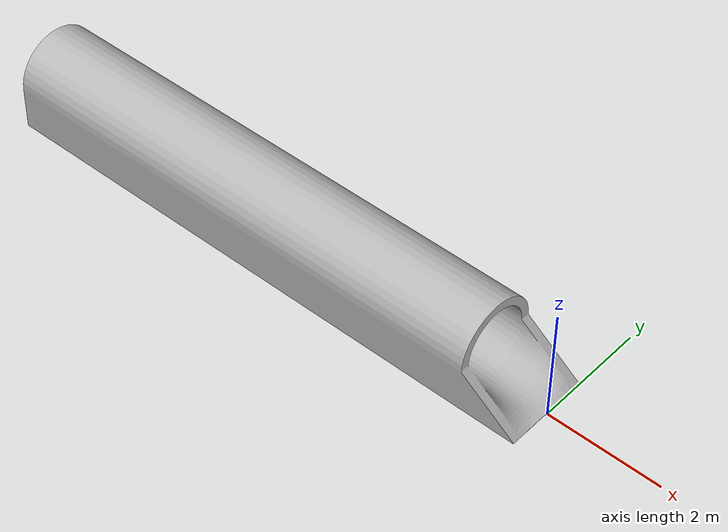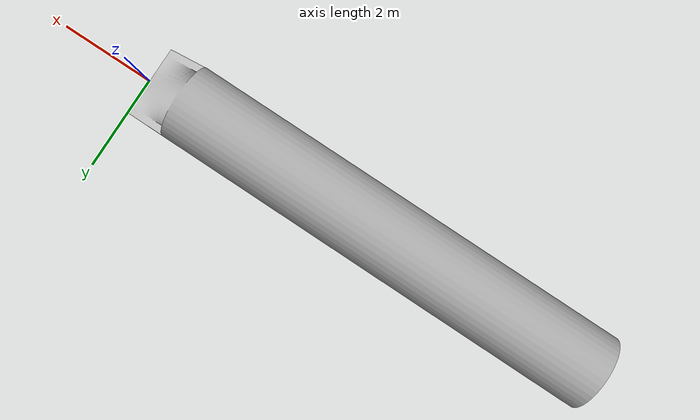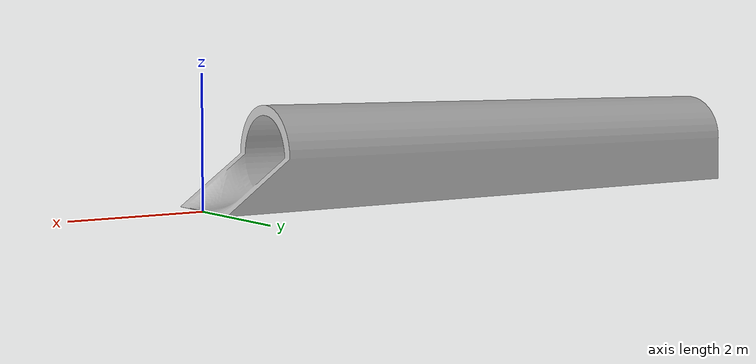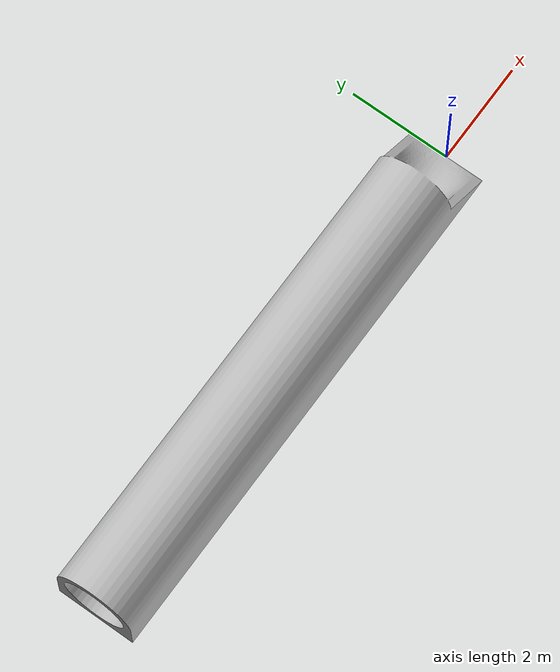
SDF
<?xml version="1.0" ?>
<sdf version="1.5">
  <model name="tunnel">
    <static>true</static>
    <link name="chassis">
      <pose>-10.15 -0.762 0 0 0 0</pose>
      <collision name="collision">
        <geometry>
          <mesh>
            <uri>model://tunnel/meshes/tunnel.dae</uri>
          </mesh>
        </geometry>
      </collision>
      <visual name="visual">
        <geometry>
          <mesh>
            <uri>model://tunnel/meshes/tunnel.dae</uri>
          </mesh>
        </geometry>
        <material>
          <script>
            <uri>model://tunnel/materials/scripts</uri>
            <uri>model://tunnel/materials/textures</uri>
            <name>Concrete/Diffuse</name>
          </script>
        </material>
      </visual>
    </link>
  </model>
</sdf>
